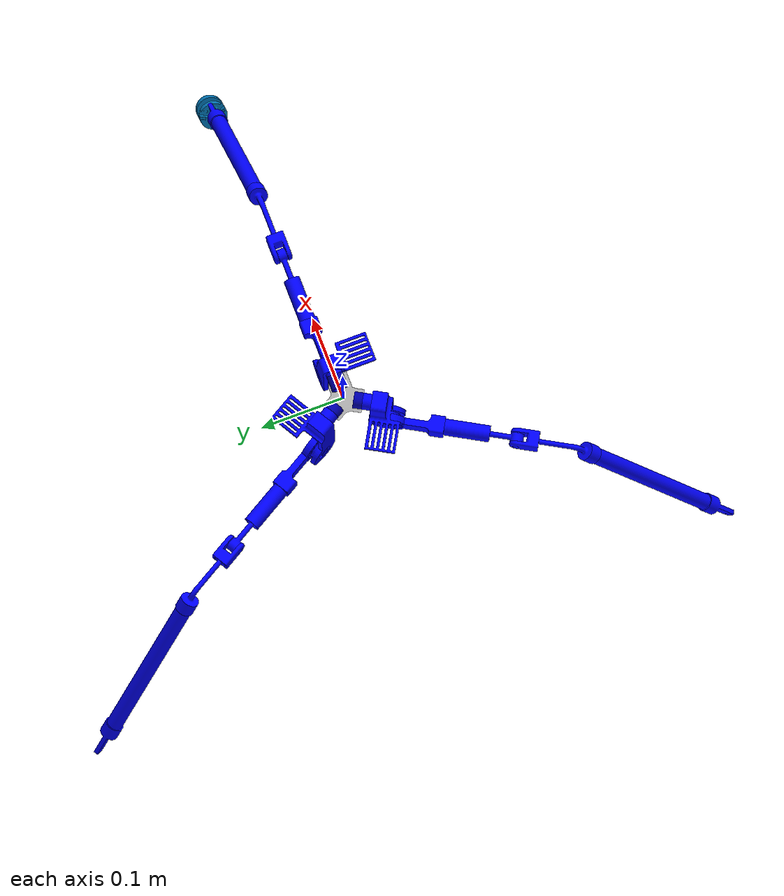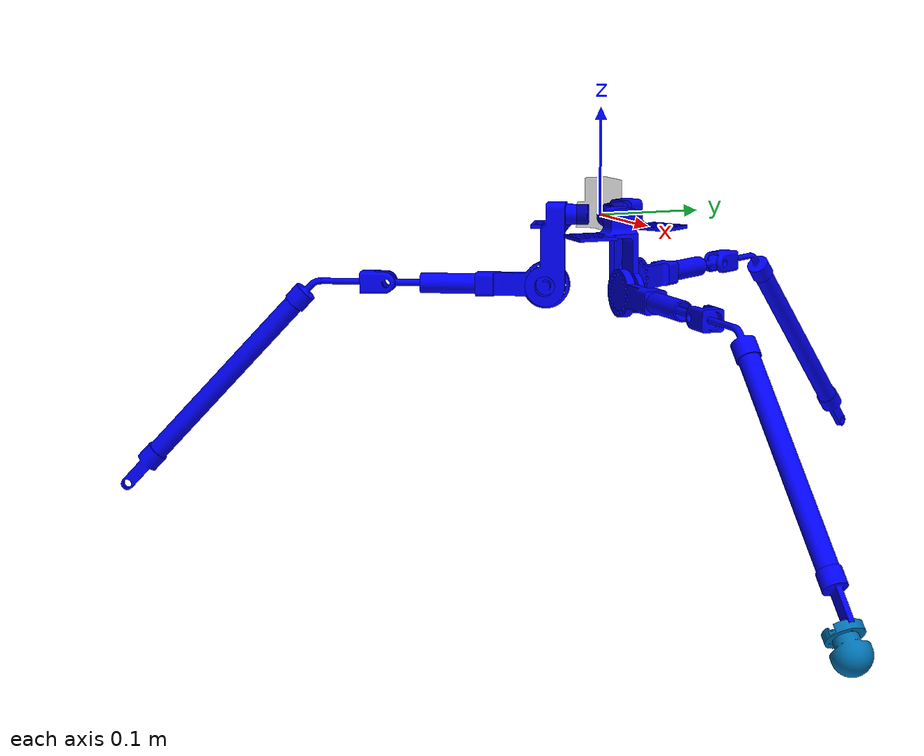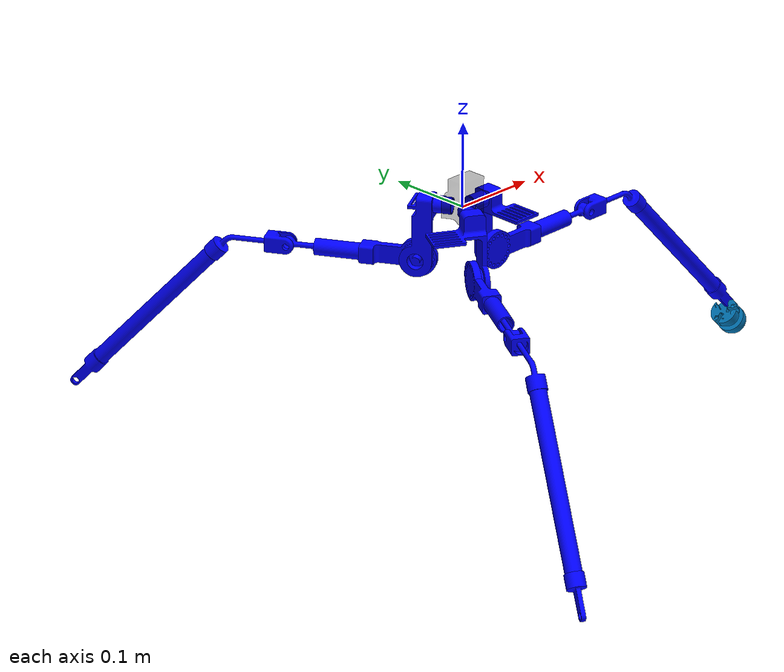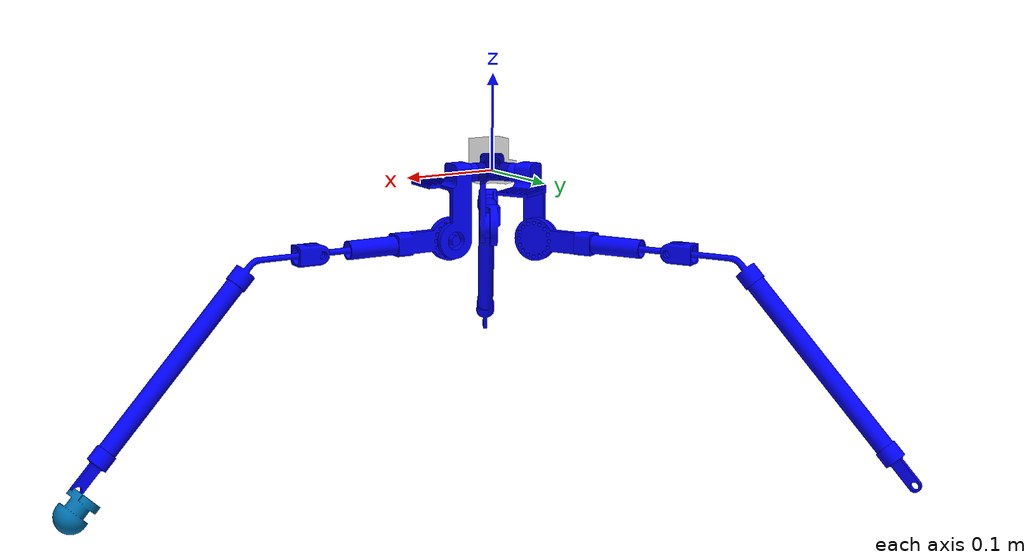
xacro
<?xml version="1.0"?>
<!-- Revolute-Revolute Manipulator -->
<robot name="fullGoatLeg" xmlns:xacro="http://ros.org/wiki/xacro">

  <!-- Constants for robot dimensions -->
  <xacro:property name="PI" value="3.1415926535897931"/>

  <!-- Import all Gazebo-customization elements, including Gazebo colors -->
  <!-- Import Rviz colors -->
	<xacro:include filename="$(find rrbot_description)/urdf/openGoatLeg.xacro" />

	<link name="footAssembly">
		<visual>
			<geometry>
				<mesh filename="package://rrbot_description/meshes/footassembly.dae"/>
			</geometry>
			<origin xyz="0 0 0" rpy="0 0 3.1415926535897931"/>
		</visual>
		<collision>
			<geometry>
				<mesh filename="package://rrbot_description/meshes/footassembly.dae"/>
			</geometry>
			<origin xyz="0 0 0" rpy="0 0 3.1415926535897931"/>
		</collision>
		<inertial>
			<mass value="0.02883033104"/>
			<inertia ixx="0.00757" ixy="0.0" ixz="0.0" iyy="0.212" iyz="0.0" izz="0.21199"/>
		</inertial>
  	</link>

  	<joint name="footAssembly_to_leg1_footBracket" type="revolute">
		<axis xyz="0 0 1"/>
		<limit effort="1000.0" lower="-3.1415926535897931" upper="3.1415926535897931" velocity="0"/>
		<origin xyz="0 0.01159 0" rpy="0 0 0"/>
		<child link="footAssembly"/>
		<parent link="leg1_footBracket"/>
  	</joint>

</robot>

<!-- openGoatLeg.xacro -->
<!-- Revolute-Revolute Manipulator -->
<robot name="rrbot" xmlns:xacro="http://ros.org/wiki/xacro">

  <!-- Constants for robot dimensions -->
  <xacro:property name="PI" value="3.1415926535897931"/>

  <!-- Import all Gazebo-customization elements, including Gazebo colors -->
  <!-- Import Rviz colors -->
  <xacro:include filename="$(find rrbot_description)/urdf/materials.xacro" />

  <!-- measurements in 10 cm -->

  <!--HEAD LINK  -->

  <link name = "hipJoint">
    <visual>
      <geometry>
        <mesh filename="package://rrbot_description/meshes/singleleghipjoint.dae"/>
      </geometry>
      <material name ="black" />
      <origin xyz="0 0 0" rpy="0 0 0"/>
    </visual>
    <collision>
      <geometry>
        <mesh filename="package://rrbot_description/meshes/singleleghipjoint.dae"/>
      </geometry>
      <origin xyz="0 0 0" rpy="0 0 0"/>
    </collision>
    <inertial>
      <mass value="0.02883033104"/>
      <inertia ixx="0.00757" ixy="0.0" ixz="0.0" iyy="0.212" iyz="0.0" izz="0.21199"/>
    </inertial>
  </link>

<xacro:macro name="singleLeg" params="prefix reflect">

  <link name="${prefix}_pipebetweenhipandmotormountingbracket">
    <visual>
      <geometry>
        <mesh filename="package://rrbot_description/meshes/pipebetweenhipandmotormountingbracket.dae"/>
      </geometry>
      <material name = "blue" />
      <origin xyz="0 0 0" rpy="0 0 ${-PI/2}"/>
    </visual>
    <collision>
      <geometry>
        <mesh filename="package://rrbot_description/meshes/pipebetweenhipandmotormountingbracket.dae"/>
      </geometry>
      <origin xyz="0 0 0" rpy="0 0 ${-PI/2}"/>
    </collision>
    <inertial>
      <mass value="0.02883033104"/>
      <inertia ixx="0.00757" ixy="0.0" ixz="0.0" iyy="0.212" iyz="0.0" izz="0.21199"/>
    </inertial>
  </link>

  <link name="${prefix}_motormountingbracket_fixed">
    <visual>
      <geometry>
        <mesh filename="package://rrbot_description/meshes/motormountingbracket_fixed.dae"/>
      </geometry>
      <material name = "blue" />
      <origin xyz="0 0 0" rpy="0 0 0"/>
    </visual>
    <collision>
      <geometry>
        <mesh filename="package://rrbot_description/meshes/motormountingbracket_fixed.dae"/>
      </geometry>
      <origin xyz="0 0 0" rpy="0 0 0"/>
    </collision>
    <inertial>
      <mass value="0.02883033104"/>
      <inertia ixx="0.00757" ixy="0.0" ixz="0.0" iyy="0.212" iyz="0.0" izz="0.21199"/>
    </inertial>
  </link>

  <link name="${prefix}_upper_leg_bracket">
    <visual>
      <geometry>
        <mesh filename="package://rrbot_description/meshes/upper_leg_bracket.dae"/>
      </geometry>
      <material name = "blue" />
      <origin xyz="0 0 0" rpy="0 0 ${PI/2}"/>
    </visual>
    <collision>
      <geometry>
        <mesh filename="package://rrbot_description/meshes/upper_leg_bracket.dae"/>
      </geometry>
      <origin xyz="0 0 0" rpy="0 0 ${PI/2}"/>
    </collision>
    <inertial>
      <mass value="0.02883033104"/>
      <inertia ixx="0.00757" ixy="0.0" ixz="0.0" iyy="0.212" iyz="0.0" izz="0.21199"/>
    </inertial>
  </link>

    <link name="${prefix}_upper_leg">
    <visual>
      <geometry>
        <mesh filename="package://rrbot_description/meshes/upper_leg.dae"/>
      </geometry>
      <material name = "blue" />
      <origin xyz="0 0 0" rpy="0 0 ${-PI/2}"/>
    </visual>
    <collision>
      <geometry>
        <mesh filename="package://rrbot_description/meshes/upper_leg.dae"/>
      </geometry>
      <origin xyz="0 0 0" rpy="0 0 ${-PI/2}"/>
    </collision>
    <inertial>
      <mass value="0.02883033104"/>
      <inertia ixx="0.00757" ixy="0.0" ixz="0.0" iyy="0.212" iyz="0.0" izz="0.21199"/>
    </inertial>
  </link>

  <link name="${prefix}_eyeJoint">
    <visual>
      <geometry>
        <mesh filename="package://rrbot_description/meshes/eye_joint.dae"/>
      </geometry>
      <material name = "blue" />
      <origin xyz="0 0 0" rpy="0 0 ${PI/2}"/>
    </visual>
    <collision>
      <geometry>
        <mesh filename="package://rrbot_description/meshes/eye_joint.dae"/>
      </geometry>
      <origin xyz="0 0 0" rpy="0 0 ${PI/2}"/>
    </collision>
    <inertial>
      <mass value="0.02883033104"/>
      <inertia ixx="0.00757" ixy="0.0" ixz="0.0" iyy="0.212" iyz="0.0" izz="0.21199"/>
    </inertial>
  </link>

  <link name="${prefix}_sphericalJointMiddleLink">
    <visual>
      <geometry>
        <mesh filename="package://rrbot_description/meshes/spherical_joint_middle_piece.dae"/>
      </geometry>
      <material name = "blue" />
      <origin xyz="0 0 0" rpy="0 0 ${PI/2}"/>
    </visual>
    <collision>
      <geometry>
        <mesh filename="package://rrbot_description/meshes/spherical_joint_middle_piece.dae"/>
      </geometry>
      <origin xyz="0 0 0" rpy="0 0 ${PI/2}"/>
    </collision>
    <inertial>
      <mass value="0.02883033104"/>
      <inertia ixx="0.00757" ixy="0.0" ixz="0.0" iyy="0.212" iyz="0.0" izz="0.21199"/>
    </inertial>
  </link>

  <link name="${prefix}_bendElbow">
    <visual>
      <geometry>
        <mesh filename="package://rrbot_description/meshes/elbow_bend.dae"/>
      </geometry>
      <material name = "blue" />
      <origin xyz="0 0 0" rpy="0 0 0"/>
    </visual>
    <collision>
      <geometry>
        <mesh filename="package://rrbot_description/meshes/elbow_bend.dae"/>
      </geometry>
      <origin xyz="0 0 0" rpy="0 0 0"/>
    </collision>
    <inertial>
      <mass value="0.02883033104"/>
      <inertia ixx="0.00757" ixy="0.0" ixz="0.0" iyy="0.212" iyz="0.0" izz="0.21199"/>
    </inertial>
  </link>

  <link name="${prefix}_lowerLeg">
    <visual>
      <geometry>
        <mesh filename="package://rrbot_description/meshes/lower_leg.dae"/>
      </geometry>
      <material name = "blue" />
      <origin xyz="0 0 0" rpy="0 0 ${-PI/2}"/>
    </visual>
    <collision>
      <geometry>
        <mesh filename="package://rrbot_description/meshes/lower_leg.dae"/>
      </geometry>
      <origin xyz="0 0 0" rpy="0 0 ${-PI/2}"/>
    </collision>
    <inertial>
      <mass value="0.02883033104"/>
      <inertia ixx="0.00757" ixy="0.0" ixz="0.0" iyy="0.212" iyz="0.0" izz="0.21199"/>
    </inertial>
  </link>

  <link name="${prefix}_footBracket">
    <visual>
      <geometry>
        <mesh filename="package://rrbot_description/meshes/foot_bracket.dae"/>
      </geometry>
      <material name = "blue" />
      <origin xyz="0 0 0" rpy="0 0 0"/>
    </visual>
    <collision>
      <geometry>
        <mesh filename="package://rrbot_description/meshes/foot_bracket.dae"/>
      </geometry>
      <origin xyz="0 0 0" rpy="0 0 0"/>
    </collision>
    <inertial>
      <mass value="0.02883033104"/>
      <inertia ixx="0.00757" ixy="0.0" ixz="0.0" iyy="0.212" iyz="0.0" izz="0.21199"/>
    </inertial>
  </link>

  <!-- JOINTS -->

  <!-- FROM PART1 TO HEAD_LINK -->
  <joint name="${prefix}_hip_to_pipeBetweenHipAndMotorMountingBracket" type="fixed">
    <parent link="hipJoint"/>
    <child link="${prefix}_pipebetweenhipandmotormountingbracket"/>
    <origin xyz="${0.01176*cos(reflect*120*PI/180)} ${0.01176*sin(reflect*120*PI/180)}  0" rpy="0 0 ${reflect*120*PI/180}"/>
  </joint>

  <joint name="${prefix}_pipebetweenhipandmotormountingbracket_to_motor" type="fixed">
    <parent link="${prefix}_pipebetweenhipandmotormountingbracket"/>
    <child link="${prefix}_motormountingbracket_fixed"/>
    <origin xyz="0.03073 0 0" rpy="${-PI/2} 0 0"/>
  </joint>

  <joint name="${prefix}_motorMoutingBracket_to_upperLegBracket" type="revolute">
    <axis xyz="0 0 1"/>
    <limit effort="1000.0" lower="${-PI/2}" upper="${PI/2}" velocity="0"/>
    <origin xyz="0.00864 0.06680 0.01267" rpy="0 0 0"/>
    <parent link="${prefix}_motormountingbracket_fixed"/>
    <child link="${prefix}_upper_leg_bracket"/>
  </joint>

  <joint name="${prefix}_upperLegBracket_to_upperLink" type="fixed">
    <parent link="${prefix}_upper_leg_bracket"/>
    <child link="${prefix}_upper_leg"/>
    <origin xyz="0.05166 0 -0.01150" rpy="0 0 0"/>
  </joint>

  <joint name="${prefix}_upperLeg_to_eyeJoint" type="revolute">
    <axis xyz="1 0 0"/>
    <limit effort="1000.0" lower="${-PI}" upper="${PI}" velocity="0"/>
    <origin xyz="0.09885 0 0" rpy="0 0 0"/>
    <parent link="${prefix}_upper_leg"/>
    <child link="${prefix}_eyeJoint"/>
  </joint>

  <joint name="${prefix}_eyeJoint_to_sphericalJointMiddleLink" type="revolute">
    <axis xyz="0 0 1"/>
    <limit effort="1000.0" lower="${-PI/2}" upper="${PI/2}" velocity="0"/>
    <origin xyz="0 0 0" rpy="0 0 0"/>
    <parent link="${prefix}_eyeJoint"/>
    <child link="${prefix}_sphericalJointMiddleLink"/>
  </joint>

  <joint name="${prefix}_sphericalJointMiddleLink_to_bendElbow" type="revolute">
    <axis xyz="1 0 0"/>
    <limit effort="1000.0" lower="${-PI}" upper="${PI}" velocity="0"/>
    <origin xyz="0.01916 0 0" rpy="0 0 0"/>
    <parent link="${prefix}_sphericalJointMiddleLink"/>
    <child link="${prefix}_bendElbow"/>
  </joint>

  <joint name="${prefix}_bendElbow_to_lowerLeg" type="fixed">
    <parent link="${prefix}_bendElbow"/>
    <child link="${prefix}_lowerLeg"/>
    <origin xyz="0.06170 0.01192 0" rpy="0 0 ${47*PI/180}"/>
  </joint>

  <joint name="${prefix}_lowerLeg_footBracket" type="fixed">
    <parent link="${prefix}_lowerLeg"/>
    <child link="${prefix}_footBracket"/>
    <origin xyz="0.26032 0 0" rpy="0 0 0"/>
  </joint>

</xacro:macro>
<xacro:singleLeg prefix="leg1" reflect="0" />
<xacro:singleLeg prefix="leg2" reflect="1" />
<xacro:singleLeg prefix="leg3" reflect="2" />

  <!-- GAZEBO PLUGIN -->

</robot>

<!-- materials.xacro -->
<robot>

  <material name="black">
    <color rgba="0.0 0.0 0.0 0.3"/>
  </material>

  <material name="blue">
    <color rgba="0.0 0.0 1.0 1.0"/>
  </material>

  <material name="green">
    <color rgba="0.0 0.8 0.0 1.0"/>
  </material>

  <material name="grey">
    <color rgba="0.2 0.2 0.2 1.0"/>
  </material>

  <material name="orange">
    <color rgba="${255/255} ${108/255} ${10/255} 1.0"/>
  </material>

  <material name="brown">
    <color rgba="${222/255} ${207/255} ${195/255} 1.0"/>
  </material>

  <material name="red">
    <color rgba="0.8 0.0 0.0 1.0"/>
  </material>

  <material name="white">
    <color rgba="1.0 1.0 1.0 1.0"/>
  </material>

</robot>
